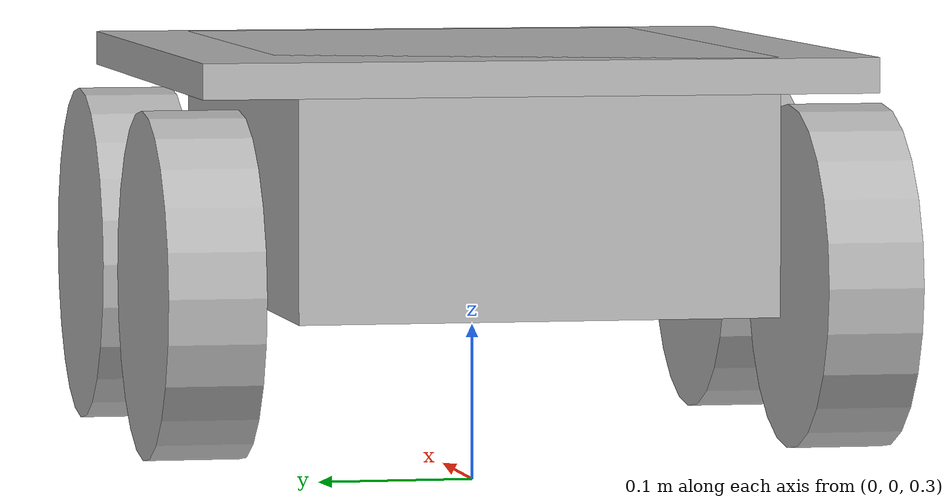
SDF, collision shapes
<sdf version='1.9'>
  <model name='MiniMando'>
    <pose>0 0 .5 0 0 0</pose>
    <self_collide>false</self_collide>
    <static>false</static>
    <link name="MiniMando/Base">
      <inertial>
        <mass>10.71</mass>
        <inertia>
          <ixx>0.6</ixx>
          <ixy>0</ixy>
          <ixz>0</ixz>
          <iyy>0.6</iyy>
          <iyz>0</iyz>
          <izz>0.6</izz>
        </inertia>
      </inertial>
      <gravity>true</gravity>
      <velocity_decay/>
      <collision name="MiniMando/Base_Collision">
        <pose>0 0 0 0 0 0</pose>
        <geometry>
          <box>
            <size>0.44 0.3 0.16</size>
          </box>
        </geometry>
        <surface>
          <contact>
            <ode>
              <min_depth>0.001</min_depth>
              <max_vel>0</max_vel>
            </ode>
          </contact>
        </surface>
      </collision>
      <collision name="MiniMando/Base_Top_Collision">
        <pose>0 0 .069 0 0 0</pose>
        <geometry>
          <box>
            <size>0.46 0.42 0.022</size>
          </box>
        </geometry>
        <surface>
          <contact>
            <ode>
              <min_depth>0.001</min_depth>
              <max_vel>0</max_vel>
            </ode>
          </contact>
        </surface>
      </collision>
      <visual name="MiniMando/BaseMetal">
        <pose>0 0 -.082 0 0 0</pose>
        <geometry>
          <mesh>
            <scale>1 1 1</scale>
            <uri>model://MiniMando/meshes/MiniMando.dae</uri>
          </mesh>
        </geometry>
      </visual>
    </link>
    <link name="sensors">
      <pose>0 0 0 0 0 0</pose>
      <inertial>
        <pose>0 0 0 0 0 0</pose>
        <mass>0.0000001</mass>
        <inertia>
          <ixx>0.000000000001</ixx>
          <ixy>0</ixy>
          <ixz>0</ixz>
          <iyy>0.000000000001</iyy>
          <iyz>0</iyz>
          <izz>0.000000000001</izz>
        </inertia>
      </inertial>
      <sensor name="imu_sensor" type="imu">
        <always_on>1</always_on>
        <update_rate>250</update_rate>
      </sensor>
      <sensor name="mag_sensor" type="magnetometer">
        <always_on>1</always_on>
        <update_rate>50</update_rate>
      </sensor>
      <sensor name="altimeter_sensor" type="altimeter">
        <always_on>1</always_on>
        <update_rate>50</update_rate>
      </sensor>
      <sensor name="navsat_sensor" type="navsat">
        <always_on>1</always_on>
        <update_rate>10</update_rate>
        <position_sensing>
        </position_sensing>
        <velocity_sensing>
        </velocity_sensing>
      </sensor>
    </link>
    <link name="MiniMando/FrontLeftHubMotorWheel">
      <pose relative_to="MiniMando/FrontLeftHubMotorWheelJoint">0 0 0 0 0 0</pose>
      <inertial>
        <mass>3.854</mass>
        <inertia>
          <ixx>0.009002</ixx>
          <ixy>0.0006021</ixy>
          <ixz>0</ixz>
          <iyy>0.01313</iyy>
          <iyz>0</iyz>
          <izz>0.009003</izz>
        </inertia>
      </inertial>
      <gravity>true</gravity>
      <velocity_decay/>
      <visual name="MiniMando/FrontLeftHubMotorWheelMetal_Visual">
        <pose>0 0 0 0 0 0</pose>
        <geometry>
          <mesh>
            <scale>1 1 1</scale>
            <uri>model://MiniMando/meshes/HubMotor.dae</uri>
          </mesh>
        </geometry>
      </visual>
      <visual name="MiniMando/FrontLeftHubMotorWheelRubber_Visual">
        <pose>0 0 0 0 0 0</pose>
        <geometry>
          <mesh>
            <scale>1 1 1</scale>
            <uri>model://MiniMando/meshes/RubberWheel.dae</uri>
          </mesh>
        </geometry>
      </visual>
      <collision name="MiniMando/FrontLeftHubMotorWheel_Collision">
        <pose>0 0 0 1.57079632679 0 0</pose>
        <geometry>
          <cylinder>
            <radius>.108</radius>
            <length>.06</length>
          </cylinder>
        </geometry>
        <surface>
          <contact>
            <ode>
              <min_depth>0.001</min_depth>
              <max_vel>0</max_vel>
            </ode>
          </contact>
          <friction>
            <ode>
              <mu>1.0</mu>
              <mu2>0.8</mu2>
              <fdir1>1 0 0</fdir1>
            </ode>
          </friction>
        </surface>
      </collision>
    </link>
    <joint name="MiniMando/FrontLeftHubMotorWheelJoint" type="revolute">
      <parent>MiniMando/Base</parent>
      <child>MiniMando/FrontLeftHubMotorWheel</child>
      <pose relative_to="MiniMando/Base">.14 .204 -.061 0 0 3.14159265359</pose>
      <axis>
        <xyz>0 1 0</xyz>
        <limit>
          <lower>-1e+16</lower>
          <upper>1e+16</upper>
        </limit>
        <use_parent_model_frame>1</use_parent_model_frame>
      </axis>
    </joint>
    <link name="MiniMando/BackRightHubMotorWheel">
      <pose relative_to="MiniMando/BackRightHubMotorWheelJoint">0 0 0 0 0 0</pose>
      <inertial>
        <mass>3.854</mass>
        <inertia>
          <ixx>0.009002</ixx>
          <ixy>0.0006021</ixy>
          <ixz>0</ixz>
          <iyy>0.01313</iyy>
          <iyz>0</iyz>
          <izz>0.009003</izz>
        </inertia>
      </inertial>
      <gravity>true</gravity>
      <velocity_decay/>
      <visual name="MiniMando/BackRightHubMotorWheelMetal_Visual">
        <pose>0 0 0 0 0 0</pose>
        <geometry>
          <mesh>
            <scale>1 1 1</scale>
            <uri>model://MiniMando/meshes/HubMotor.dae</uri>
          </mesh>
        </geometry>
      </visual>
      <visual name="MiniMando/BackRightHubMotorWheelRubber_Visual">
        <pose>0 0 0 0 0 0</pose>
        <geometry>
          <mesh>
            <scale>1 1 1</scale>
            <uri>model://MiniMando/meshes/RubberWheel.dae</uri>
          </mesh>
        </geometry>
      </visual>
      <collision name="MiniMando/BackRightHubMotorWheel_Collision">
        <pose>0 0 0 1.57079632679 0 0</pose>
        <geometry>
          <cylinder>
            <radius>.108</radius>
            <length>.06</length>
          </cylinder>
        </geometry>
        <surface>
          <contact>
            <ode>
              <min_depth>0.001</min_depth>
              <max_vel>0</max_vel>
            </ode>
          </contact>
          <friction>
            <ode>
              <mu>1.0</mu>
              <mu2>0.8</mu2>
              <fdir1>1 0 0</fdir1>
            </ode>
          </friction>
        </surface>
      </collision>
    </link>
    <joint name="MiniMando/BackRightHubMotorWheelJoint" type="revolute">
      <parent>MiniMando/Base</parent>
      <child>MiniMando/BackRightHubMotorWheel</child>
      <pose relative_to="MiniMando/Base">-.14 -.204 -.061 0 0 0</pose>
      <axis>
        <xyz>0 1 0</xyz>
        <limit>
          <lower>-1e+16</lower>
          <upper>1e+16</upper>
        </limit>
        <use_parent_model_frame>1</use_parent_model_frame>
      </axis>
    </joint>
    <link name="MiniMando/FrontRightHubMotorWheel">
      <pose relative_to="MiniMando/FrontRightHubMotorWheelJoint">0 0 0 0 0 0</pose>
      <inertial>
        <mass>3.854</mass>
        <inertia>
          <ixx>0.009002</ixx>
          <ixy>0.0006021</ixy>
          <ixz>0</ixz>
          <iyy>0.01313</iyy>
          <iyz>0</iyz>
          <izz>0.009003</izz>
        </inertia>
      </inertial>
      <gravity>true</gravity>
      <velocity_decay/>
      <visual name="MiniMando/FrontRightHubMotorWheelMetal_Visual">
        <pose>0 0 0 0 0 0</pose>
        <geometry>
          <mesh>
            <scale>1 1 1</scale>
            <uri>model://MiniMando/meshes/HubMotor.dae</uri>
          </mesh>
        </geometry>
      </visual>
      <visual name="MiniMando/FrontRightHubMotorWheelRubber_Visual">
        <pose>0 0 0 0 0 0</pose>
        <geometry>
          <mesh>
            <scale>1 1 1</scale>
            <uri>model://MiniMando/meshes/RubberWheel.dae</uri>
          </mesh>
        </geometry>
      </visual>
      <collision name="MiniMando/FrontRightHubMotorWheel_Collision">
        <pose>0 0 0 1.57079632679 0 0</pose>
        <geometry>
          <cylinder>
            <radius>.108</radius>
            <length>.06</length>
          </cylinder>
        </geometry>
        <surface>
          <contact>
            <ode>
              <min_depth>0.001</min_depth>
              <max_vel>0</max_vel>
            </ode>
          </contact>
          <friction>
            <ode>
              <mu>1.0</mu>
              <mu2>0.8</mu2>
              <fdir1>1 0 0</fdir1>
            </ode>
          </friction>
        </surface>
      </collision>
    </link>
    <joint name="MiniMando/FrontRightHubMotorWheelJoint" type="revolute">
      <parent>MiniMando/Base</parent>
      <child>MiniMando/FrontRightHubMotorWheel</child>
      <pose relative_to="MiniMando/Base">.14 -.204 -.061 0 0 0</pose>
      <axis>
        <xyz>0 1 0</xyz>
        <limit>
          <lower>-1e+16</lower>
          <upper>1e+16</upper>
        </limit>
        <use_parent_model_frame>1</use_parent_model_frame>
      </axis>
    </joint>
    <link name="MiniMando/BackLeftHubMotorWheel">
      <pose relative_to="MiniMando/BackLeftHubMotorWheelJoint">0 0 0 0 0 0</pose>
      <inertial>
        <mass>3.854</mass>
        <inertia>
          <ixx>0.009002</ixx>
          <ixy>0.0006021</ixy>
          <ixz>0</ixz>
          <iyy>0.01313</iyy>
          <iyz>0</iyz>
          <izz>0.009003</izz>
        </inertia>
      </inertial>
      <gravity>true</gravity>
      <velocity_decay/>
      <visual name="MiniMando/BackLeftHubMotorWheelMetal_Visual">
        <pose>0 0 0 0 0 0</pose>
        <geometry>
          <mesh>
            <scale>1 1 1</scale>
            <uri>model://MiniMando/meshes/HubMotor.dae</uri>
          </mesh>
        </geometry>
      </visual>
      <visual name="MiniMando/BackLeftHubMotorWheelRubber_Visual">
        <pose>0 0 0 0 0 0</pose>
        <geometry>
          <mesh>
            <scale>1 1 1</scale>
            <uri>model://MiniMando/meshes/RubberWheel.dae</uri>
          </mesh>
        </geometry>
      </visual>
      <collision name="MiniMando/BackLeftHubMotorWheel_Collision">
        <pose>0 0 0 1.57079632679 0 0</pose>
        <geometry>
          <cylinder>
            <radius>.108</radius>
            <length>.06</length>
          </cylinder>
        </geometry>
        <surface>
          <contact>
            <ode>
              <min_depth>0.001</min_depth>
              <max_vel>0</max_vel>
            </ode>
          </contact>
          <friction>
            <ode>
              <mu>1.0</mu>
              <mu2>0.8</mu2>
              <fdir1>1 0 0</fdir1>
            </ode>
          </friction>
        </surface>
      </collision>
    </link>
    <joint name="MiniMando/BackLeftHubMotorWheelJoint" type="revolute">
      <parent>MiniMando/Base</parent>
      <child>MiniMando/BackLeftHubMotorWheel</child>
      <pose relative_to="MiniMando/Base">-.14 .204 -.061 0 0 3.14159265359</pose>
      <axis>
        <xyz>0 1 0</xyz>
        <limit>
          <lower>-1e+16</lower>
          <upper>1e+16</upper>
        </limit>
        <use_parent_model_frame>1</use_parent_model_frame>
      </axis>
    </joint>
    <plugin
        filename="gz-sim-joint-controller-system"
        name="gz::sim::systems::JointController">
      <joint_name>MiniMando/BackRightHubMotorWheelJoint</joint_name>
      <sub_topic>rear_right</sub_topic>
    </plugin>
    <plugin
        filename="gz-sim-joint-controller-system"
        name="gz::sim::systems::JointController">
      <joint_name>MiniMando/BackLeftHubMotorWheelJoint</joint_name>
      <sub_topic>rear_left</sub_topic>
    </plugin>
    <plugin
        filename="gz-sim-joint-controller-system"
        name="gz::sim::systems::JointController">
      <joint_name>MiniMando/FrontLeftHubMotorWheelJoint</joint_name>
      <sub_topic>front_left</sub_topic>
    </plugin>
    <plugin
        filename="gz-sim-joint-controller-system"
        name="gz::sim::systems::JointController">
      <joint_name>MiniMando/FrontRightHubMotorWheelJoint</joint_name>
      <sub_topic>front_right</sub_topic>
    </plugin>
    <plugin
      filename="gz-sim-odometry-publisher-system"
      name="gz::sim::systems::OdometryPublisher">
      <odom_frame>map</odom_frame>
      <xyz_offset>0 0 0</xyz_offset>
      <rpy_offset>0 0 0</rpy_offset>
      <gaussian_noise>0</gaussian_noise>
      <dimensions>3</dimensions>
      <odom_publish_frequency>50</odom_publish_frequency>
    </plugin>
  </model>
</sdf>
